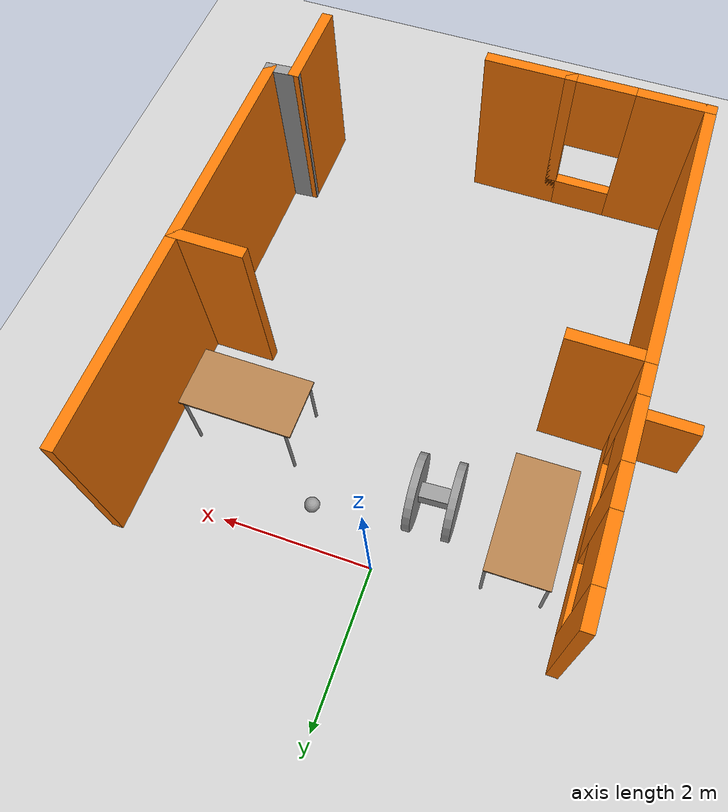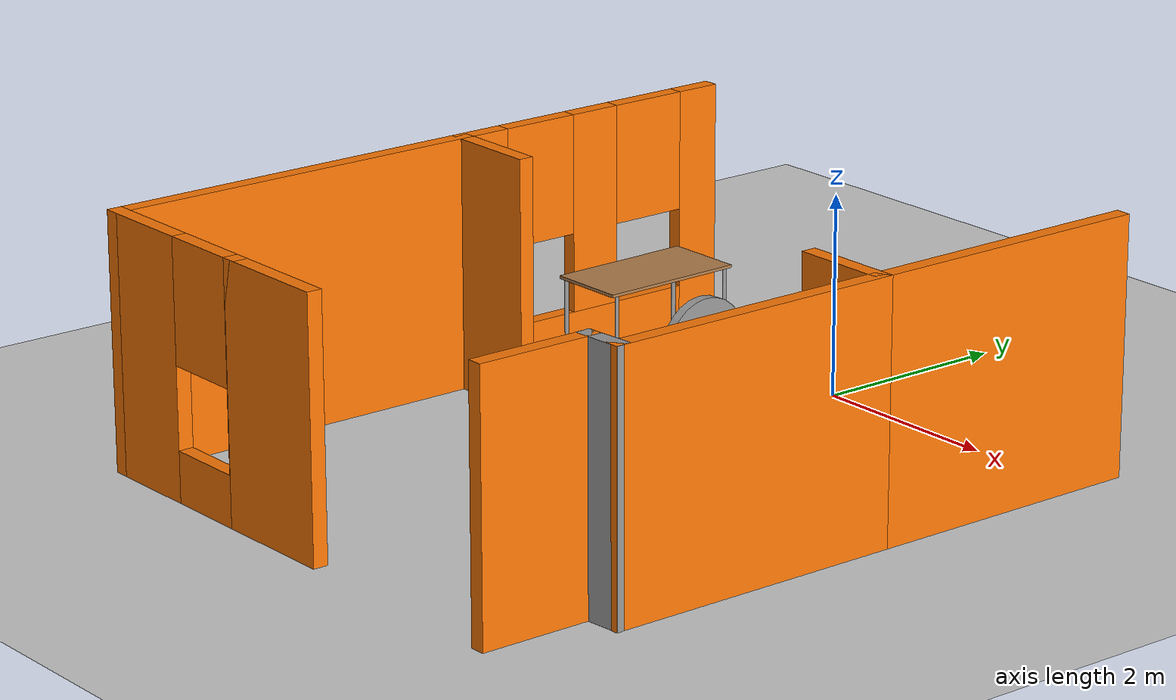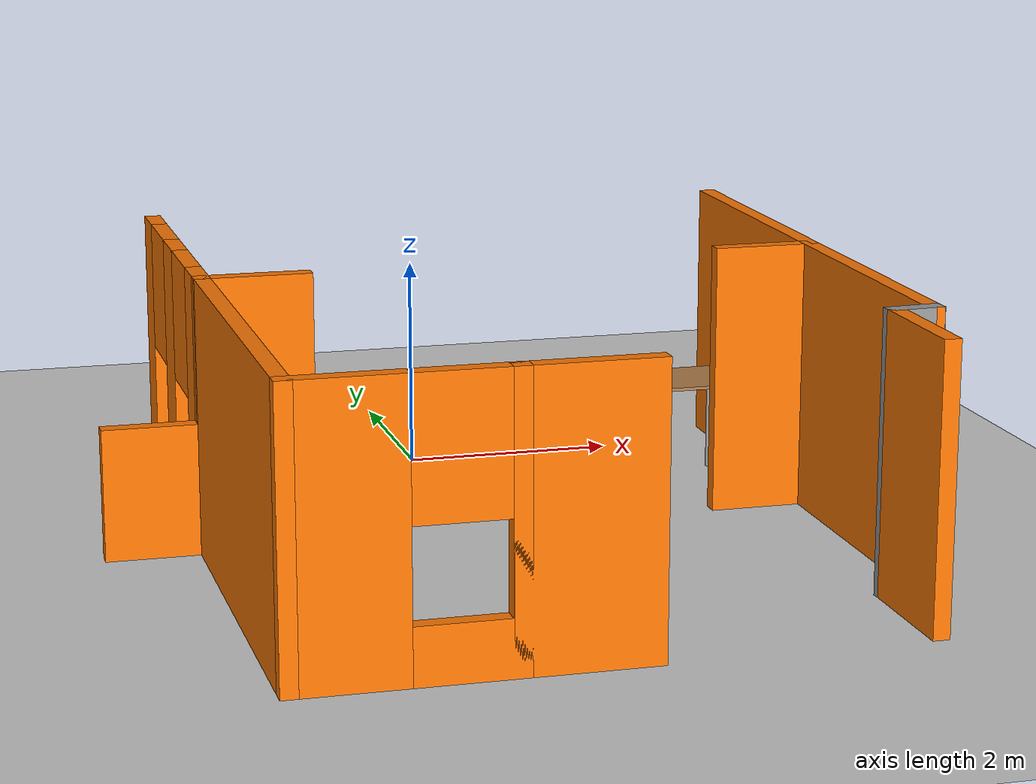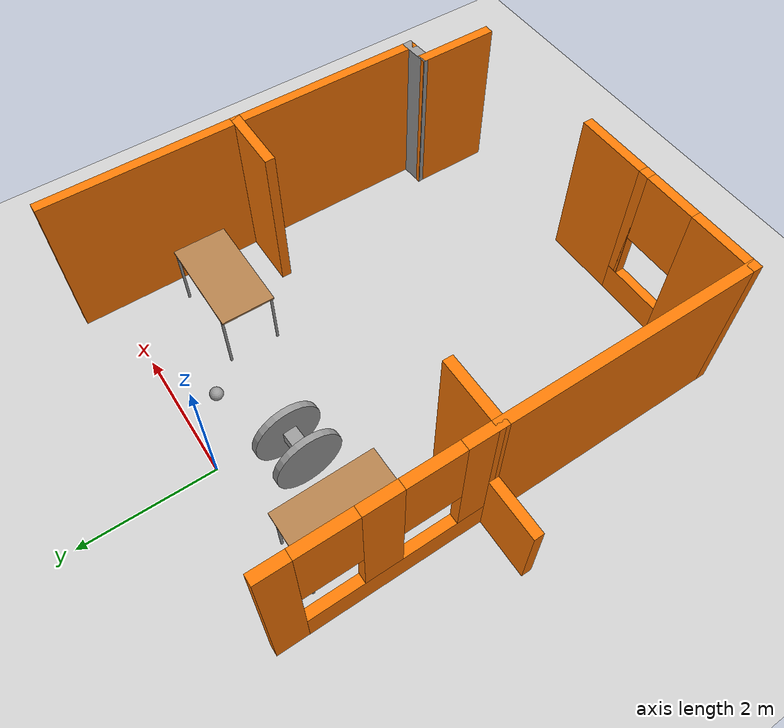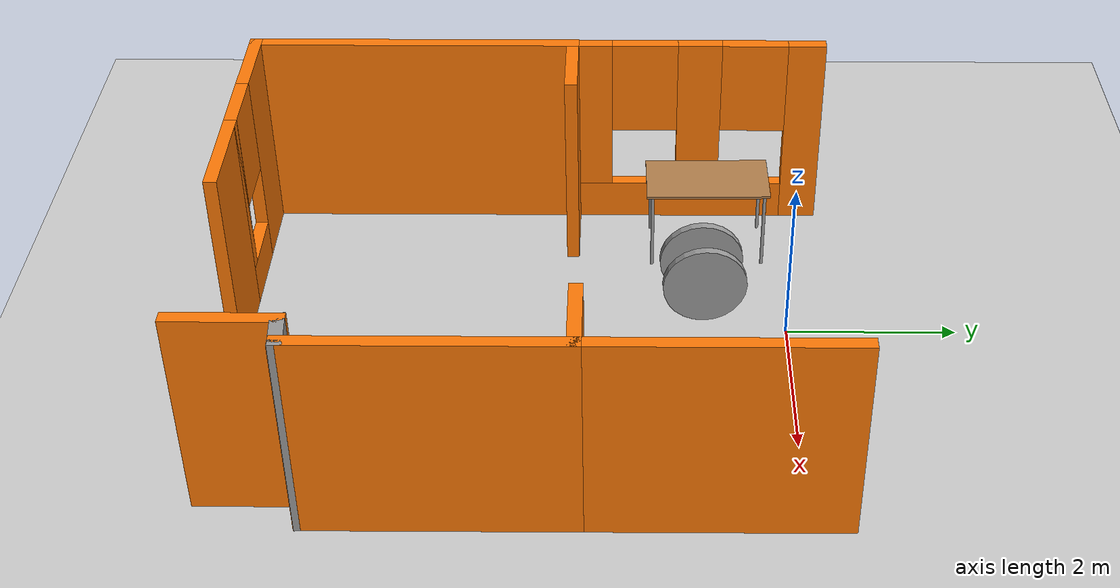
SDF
<sdf version="1.6">
 <world name="default">
  <model name="ground_plane">
   <static>1</static>
   <link name="link">
    <collision name="collision">
     <geometry><plane><normal>0 0 1</normal><size>100 100</size></plane></geometry>
     <surface>
      <contact><collide_bitmask>65535</collide_bitmask></contact>
      <friction><ode><mu>100</mu><mu2>50</mu2></ode></friction>
     </surface>
    </collision>
    <visual name="visual">
     <cast_shadows>0</cast_shadows>
     <geometry><plane><normal>0 0 1</normal><size>100 100</size></plane></geometry>
     <material>
      <script><uri>file://media/materials/scripts/gazebo.material</uri><name>Gazebo/Grey</name></script>
     </material>
    </visual>
   </link>
  </model>
  <model name="table">
   <static>1</static>
   <link name="link">
    <collision name="surface">
     <pose>0 0 1 0 -0 0</pose>
     <geometry><box><size>1.5 0.8 0.03</size></box></geometry>
     <surface><friction><ode><mu>0.6</mu><mu2>0.6</mu2></ode></friction></surface>
    </collision>
    <visual name="visual1">
     <pose>0 0 1 0 -0 0</pose>
     <geometry><box><size>1.5 0.8 0.03</size></box></geometry>
     <material>
      <script><uri>file://media/materials/scripts/gazebo.material</uri><name>Gazebo/Wood</name></script>
     </material>
    </visual>
    <collision name="front_left_leg">
     <pose>0.68 0.38 0.5 0 -0 0</pose>
     <geometry><cylinder><radius>0.02</radius><length>1</length></cylinder></geometry>
    </collision>
    <visual name="front_left_leg">
     <pose>0.68 0.38 0.5 0 -0 0</pose>
     <geometry><cylinder><radius>0.02</radius><length>1</length></cylinder></geometry>
     <material>
      <script><uri>file://media/materials/scripts/gazebo.material</uri><name>Gazebo/Grey</name></script>
     </material>
    </visual>
    <collision name="front_right_leg">
     <pose>0.68 -0.38 0.5 0 -0 0</pose>
     <geometry><cylinder><radius>0.02</radius><length>1</length></cylinder></geometry>
    </collision>
    <visual name="front_right_leg">
     <pose>0.68 -0.38 0.5 0 -0 0</pose>
     <geometry><cylinder><radius>0.02</radius><length>1</length></cylinder></geometry>
     <material>
      <script><uri>file://media/materials/scripts/gazebo.material</uri><name>Gazebo/Grey</name></script>
     </material>
    </visual>
    <collision name="back_right_leg">
     <pose>-0.68 -0.38 0.5 0 -0 0</pose>
     <geometry><cylinder><radius>0.02</radius><length>1</length></cylinder></geometry>
    </collision>
    <visual name="back_right_leg">
     <pose>-0.68 -0.38 0.5 0 -0 0</pose>
     <geometry><cylinder><radius>0.02</radius><length>1</length></cylinder></geometry>
     <material>
      <script><uri>file://media/materials/scripts/gazebo.material</uri><name>Gazebo/Grey</name></script>
     </material>
    </visual>
    <collision name="back_left_leg">
     <pose>-0.68 0.38 0.5 0 -0 0</pose>
     <geometry><cylinder><radius>0.02</radius><length>1</length></cylinder></geometry>
    </collision>
    <visual name="back_left_leg">
     <pose>-0.68 0.38 0.5 0 -0 0</pose>
     <geometry><cylinder><radius>0.02</radius><length>1</length></cylinder></geometry>
     <material>
      <script><uri>file://media/materials/scripts/gazebo.material</uri><name>Gazebo/Grey</name></script>
     </material>
    </visual>
   </link>
   <pose>-1.73141 -0.905015 0 0 0 -1.55569</pose>
  </model>
  <model name="table_clone">
   <static>1</static>
   <link name="link">
    <collision name="surface">
     <pose>0 0 1 0 -0 0</pose>
     <geometry><box><size>1.5 0.8 0.03</size></box></geometry>
     <surface><friction><ode><mu>0.6</mu><mu2>0.6</mu2></ode></friction></surface>
    </collision>
    <visual name="visual1">
     <pose>0 0 1 0 -0 0</pose>
     <geometry><box><size>1.5 0.8 0.03</size></box></geometry>
     <material>
      <script><uri>file://media/materials/scripts/gazebo.material</uri><name>Gazebo/Wood</name></script>
     </material>
    </visual>
    <collision name="front_left_leg">
     <pose>0.68 0.38 0.5 0 -0 0</pose>
     <geometry><cylinder><radius>0.02</radius><length>1</length></cylinder></geometry>
    </collision>
    <visual name="front_left_leg">
     <pose>0.68 0.38 0.5 0 -0 0</pose>
     <geometry><cylinder><radius>0.02</radius><length>1</length></cylinder></geometry>
     <material>
      <script><uri>file://media/materials/scripts/gazebo.material</uri><name>Gazebo/Grey</name></script>
     </material>
    </visual>
    <collision name="front_right_leg">
     <pose>0.68 -0.38 0.5 0 -0 0</pose>
     <geometry><cylinder><radius>0.02</radius><length>1</length></cylinder></geometry>
    </collision>
    <visual name="front_right_leg">
     <pose>0.68 -0.38 0.5 0 -0 0</pose>
     <geometry><cylinder><radius>0.02</radius><length>1</length></cylinder></geometry>
     <material>
      <script><uri>file://media/materials/scripts/gazebo.material</uri><name>Gazebo/Grey</name></script>
     </material>
    </visual>
    <collision name="back_right_leg">
     <pose>-0.68 -0.38 0.5 0 -0 0</pose>
     <geometry><cylinder><radius>0.02</radius><length>1</length></cylinder></geometry>
    </collision>
    <visual name="back_right_leg">
     <pose>-0.68 -0.38 0.5 0 -0 0</pose>
     <geometry><cylinder><radius>0.02</radius><length>1</length></cylinder></geometry>
     <material>
      <script><uri>file://media/materials/scripts/gazebo.material</uri><name>Gazebo/Grey</name></script>
     </material>
    </visual>
    <collision name="back_left_leg">
     <pose>-0.68 0.38 0.5 0 -0 0</pose>
     <geometry><cylinder><radius>0.02</radius><length>1</length></cylinder></geometry>
    </collision>
    <visual name="back_left_leg">
     <pose>-0.68 0.38 0.5 0 -0 0</pose>
     <geometry><cylinder><radius>0.02</radius><length>1</length></cylinder></geometry>
     <material>
      <script><uri>file://media/materials/scripts/gazebo.material</uri><name>Gazebo/Grey</name></script>
     </material>
    </visual>
   </link>
   <pose>2.1037 -1.35382 0 0 -0 0</pose>
  </model>
  <model name="myrobot">
   <link name="link_2">
    <pose>-0.013333 0 -0.013331 0 -0 0</pose>
    <inertial>
     <mass>1</mass>
     <inertia>
      <ixx>0.166667</ixx>
      <ixy>0</ixy>
      <ixz>0</ixz>
      <iyy>0.166667</iyy>
      <iyz>0</iyz>
      <izz>0.166667</izz>
     </inertia>
    </inertial>
    <visual name="visual">
     <geometry><box><size>0.2 0.4 0.2</size></box></geometry>
     <material>
      <lighting>1</lighting>
      <script><uri>file://media/materials/scripts/gazebo.material</uri><name>Gazebo/Grey</name></script>
      <shader type="pixel"><normal_map>__default__</normal_map></shader>
      <ambient>0.3 0.3 0.3 1</ambient>
      <diffuse>0.7 0.7 0.7 1</diffuse>
      <specular>0.01 0.01 0.01 1</specular>
      <emissive>0 0 0 1</emissive>
     </material>
    </visual>
    <collision name="collision">
     <geometry><box><size>0.2 0.4 0.2</size></box></geometry>
     <surface>
      <friction>
       <ode><mu>1</mu><mu2>1</mu2><fdir1>0 0 0</fdir1><slip1>0</slip1><slip2>0</slip2></ode>
       <torsional>
        <coefficient>1</coefficient>
        <patch_radius>0</patch_radius>
        <surface_radius>0</surface_radius>
        <use_patch_radius>1</use_patch_radius>
        <ode><slip>0</slip></ode>
       </torsional>
      </friction>
      <bounce><restitution_coefficient>0</restitution_coefficient><threshold>1e+06</threshold></bounce>
      <contact>
       <collide_without_contact>0</collide_without_contact>
       <collide_without_contact_bitmask>1</collide_without_contact_bitmask>
       <collide_bitmask>1</collide_bitmask>
       <ode>
        <soft_cfm>0</soft_cfm>
        <soft_erp>0.2</soft_erp>
        <kp>1e+13</kp>
        <kd>1</kd>
        <max_vel>0.01</max_vel>
        <min_depth>0</min_depth>
       </ode>
       <bullet>
        <split_impulse>1</split_impulse>
        <split_impulse_penetration_threshold>-0.01</split_impulse_penetration_threshold>
        <soft_cfm>0</soft_cfm>
        <soft_erp>0.2</soft_erp>
        <kp>1e+13</kp>
        <kd>1</kd>
       </bullet>
      </contact>
     </surface>
    </collision>
   </link>
   <link name="link_3">
    <pose>0.006667 -0.250048 0.006665 1.5707 -0 0</pose>
    <inertial>
     <mass>1</mass>
     <inertia><ixx>0.145833</ixx><ixy>0</ixy><ixz>0</ixz><iyy>0.145833</iyy><iyz>0</iyz><izz>0.125</izz></inertia>
    </inertial>
    <visual name="visual">
     <geometry><cylinder><radius>0.5</radius><length>0.1</length></cylinder></geometry>
     <material>
      <lighting>1</lighting>
      <script><uri>file://media/materials/scripts/gazebo.material</uri><name>Gazebo/Grey</name></script>
      <shader type="pixel"><normal_map>__default__</normal_map></shader>
      <ambient>0.3 0.3 0.3 1</ambient>
      <diffuse>0.7 0.7 0.7 1</diffuse>
      <specular>0.01 0.01 0.01 1</specular>
      <emissive>0 0 0 1</emissive>
     </material>
    </visual>
    <collision name="collision">
     <geometry><cylinder><radius>0.5</radius><length>0.1</length></cylinder></geometry>
     <surface>
      <friction>
       <ode><mu>1</mu><mu2>1</mu2><fdir1>0 0 0</fdir1><slip1>0</slip1><slip2>0</slip2></ode>
       <torsional>
        <coefficient>1</coefficient>
        <patch_radius>0</patch_radius>
        <surface_radius>0</surface_radius>
        <use_patch_radius>1</use_patch_radius>
        <ode><slip>0</slip></ode>
       </torsional>
      </friction>
      <bounce><restitution_coefficient>0</restitution_coefficient><threshold>1e+06</threshold></bounce>
      <contact>
       <collide_without_contact>0</collide_without_contact>
       <collide_without_contact_bitmask>1</collide_without_contact_bitmask>
       <collide_bitmask>1</collide_bitmask>
       <ode>
        <soft_cfm>0</soft_cfm>
        <soft_erp>0.2</soft_erp>
        <kp>1e+13</kp>
        <kd>1</kd>
        <max_vel>0.01</max_vel>
        <min_depth>0</min_depth>
       </ode>
       <bullet>
        <split_impulse>1</split_impulse>
        <split_impulse_penetration_threshold>-0.01</split_impulse_penetration_threshold>
        <soft_cfm>0</soft_cfm>
        <soft_erp>0.2</soft_erp>
        <kp>1e+13</kp>
        <kd>1</kd>
       </bullet>
      </contact>
     </surface>
    </collision>
   </link>
   <link name="link_3_clone">
    <pose>0.006667 0.250048 0.006669 1.5707 -0 0</pose>
    <inertial>
     <mass>1</mass>
     <inertia><ixx>0.145833</ixx><ixy>0</ixy><ixz>0</ixz><iyy>0.145833</iyy><iyz>0</iyz><izz>0.125</izz></inertia>
    </inertial>
    <visual name="visual">
     <geometry><cylinder><radius>0.5</radius><length>0.1</length></cylinder></geometry>
     <material>
      <lighting>1</lighting>
      <script><uri>file://media/materials/scripts/gazebo.material</uri><name>Gazebo/Grey</name></script>
      <shader type="pixel"><normal_map>__default__</normal_map></shader>
      <ambient>0.3 0.3 0.3 1</ambient>
      <diffuse>0.7 0.7 0.7 1</diffuse>
      <specular>0.01 0.01 0.01 1</specular>
      <emissive>0 0 0 1</emissive>
     </material>
    </visual>
    <collision name="collision">
     <geometry><cylinder><radius>0.5</radius><length>0.1</length></cylinder></geometry>
     <surface>
      <friction>
       <ode><mu>1</mu><mu2>1</mu2><fdir1>0 0 0</fdir1><slip1>0</slip1><slip2>0</slip2></ode>
       <torsional>
        <coefficient>1</coefficient>
        <patch_radius>0</patch_radius>
        <surface_radius>0</surface_radius>
        <use_patch_radius>1</use_patch_radius>
        <ode><slip>0</slip></ode>
       </torsional>
      </friction>
      <bounce><restitution_coefficient>0</restitution_coefficient><threshold>1e+06</threshold></bounce>
      <contact>
       <collide_without_contact>0</collide_without_contact>
       <collide_without_contact_bitmask>1</collide_without_contact_bitmask>
       <collide_bitmask>1</collide_bitmask>
       <ode>
        <soft_cfm>0</soft_cfm>
        <soft_erp>0.2</soft_erp>
        <kp>1e+13</kp>
        <kd>1</kd>
        <max_vel>0.01</max_vel>
        <min_depth>0</min_depth>
       </ode>
       <bullet>
        <split_impulse>1</split_impulse>
        <split_impulse_penetration_threshold>-0.01</split_impulse_penetration_threshold>
        <soft_cfm>0</soft_cfm>
        <soft_erp>0.2</soft_erp>
        <kp>1e+13</kp>
        <kd>1</kd>
       </bullet>
      </contact>
     </surface>
    </collision>
   </link>
   <joint name="link_2_JOINT_6" type="revolute">
    <parent>link_2</parent>
    <child>link_3</child>
    <axis>
     <xyz>0 0 -1</xyz>
     <use_parent_model_frame>0</use_parent_model_frame>
     <limit>
      <lower>-1.79769e+308</lower>
      <upper>1.79769e+308</upper>
      <effort>-1</effort>
      <velocity>-1</velocity>
     </limit>
     <dynamics>
      <spring_reference>0</spring_reference>
      <spring_stiffness>0</spring_stiffness>
      <damping>0</damping>
     </dynamics>
    </axis>
    <physics>
     <ode><limit><cfm>0</cfm><erp>0.2</erp></limit><suspension><cfm>0</cfm><erp>0.2</erp></suspension></ode>
    </physics>
   </joint>
   <joint name="link_2_JOINT_7" type="revolute">
    <parent>link_2</parent>
    <child>link_3_clone</child>
    <axis>
     <xyz>0 0 1</xyz>
     <use_parent_model_frame>0</use_parent_model_frame>
     <limit>
      <lower>-1.79769e+308</lower>
      <upper>1.79769e+308</upper>
      <effort>-1</effort>
      <velocity>-1</velocity>
     </limit>
     <dynamics>
      <spring_reference>0</spring_reference>
      <spring_stiffness>0</spring_stiffness>
      <damping>0</damping>
     </dynamics>
    </axis>
    <physics>
     <ode><limit><cfm>0</cfm><erp>0.2</erp></limit><suspension><cfm>0</cfm><erp>0.2</erp></suspension></ode>
    </physics>
   </joint>
   <static>0</static>
   <pose>-0.516933 -0.988958 0.493359 3.14157 -1.56689 1.6263</pose>
  </model>
  <model name="myhouse">
   <link name="Wall_12">
    <pose>3.27238 0.092367 0 0 0 -1.5708</pose>
    <visual name="Wall_12_Visual">
     <pose>0 0 1.25 0 -0 0</pose>
     <geometry><box><size>3 0.15 2.5</size></box></geometry>
     <material>
      <script><uri>file://media/materials/scripts/gazebo.material</uri><name>Gazebo/Grey</name></script>
      <ambient>0.996078 0.47451 0.0196078 1</ambient>
      <shader type="pixel"/>
      <diffuse>0.7 0.7 0.7 1</diffuse>
      <specular>0.01 0.01 0.01 1</specular>
      <emissive>0 0 0 1</emissive>
     </material>
     <meta><layer>0</layer></meta>
    </visual>
    <collision name="Wall_12_Collision">
     <pose>0 0 1.25 0 -0 0</pose>
     <geometry><box><size>3 0.15 2.5</size></box></geometry>
     <surface>
      <friction>
       <ode><mu>1</mu><mu2>1</mu2><fdir1>0 0 0</fdir1><slip1>0</slip1><slip2>0</slip2></ode>
       <torsional>
        <coefficient>1</coefficient>
        <patch_radius>0</patch_radius>
        <surface_radius>0</surface_radius>
        <use_patch_radius>1</use_patch_radius>
        <ode><slip>0</slip></ode>
       </torsional>
      </friction>
      <bounce><restitution_coefficient>0</restitution_coefficient><threshold>1e+06</threshold></bounce>
      <contact>
       <collide_without_contact>0</collide_without_contact>
       <collide_without_contact_bitmask>1</collide_without_contact_bitmask>
       <collide_bitmask>1</collide_bitmask>
       <ode>
        <soft_cfm>0</soft_cfm>
        <soft_erp>0.2</soft_erp>
        <kp>1e+13</kp>
        <kd>1</kd>
        <max_vel>0.01</max_vel>
        <min_depth>0</min_depth>
       </ode>
       <bullet>
        <split_impulse>1</split_impulse>
        <split_impulse_penetration_threshold>-0.01</split_impulse_penetration_threshold>
        <soft_cfm>0</soft_cfm>
        <soft_erp>0.2</soft_erp>
        <kp>1e+13</kp>
        <kd>1</kd>
       </bullet>
      </contact>
     </surface>
    </collision>
   </link>
   <link name="Wall_2">
    <pose>-2.85285 -1.48287 0 0 -0 0</pose>
    <visual name="Wall_2_Visual">
     <pose>0 0 0.6 0 -0 0</pose>
     <geometry><box><size>1 0.15 1.2</size></box></geometry>
     <material>
      <script><uri>file://media/materials/scripts/gazebo.material</uri><name>Gazebo/Grey</name></script>
      <ambient>0.996078 0.47451 0.0196078 1</ambient>
      <shader type="pixel"/>
      <diffuse>0.7 0.7 0.7 1</diffuse>
      <specular>0.01 0.01 0.01 1</specular>
      <emissive>0 0 0 1</emissive>
     </material>
     <meta><layer>0</layer></meta>
    </visual>
    <collision name="Wall_2_Collision">
     <pose>0 0 0.6 0 -0 0</pose>
     <geometry><box><size>1 0.15 1.2</size></box></geometry>
     <surface>
      <friction>
       <ode><mu>1</mu><mu2>1</mu2><fdir1>0 0 0</fdir1><slip1>0</slip1><slip2>0</slip2></ode>
       <torsional>
        <coefficient>1</coefficient>
        <patch_radius>0</patch_radius>
        <surface_radius>0</surface_radius>
        <use_patch_radius>1</use_patch_radius>
        <ode><slip>0</slip></ode>
       </torsional>
      </friction>
      <bounce><restitution_coefficient>0</restitution_coefficient><threshold>1e+06</threshold></bounce>
      <contact>
       <collide_without_contact>0</collide_without_contact>
       <collide_without_contact_bitmask>1</collide_without_contact_bitmask>
       <collide_bitmask>1</collide_bitmask>
       <ode>
        <soft_cfm>0</soft_cfm>
        <soft_erp>0.2</soft_erp>
        <kp>1e+13</kp>
        <kd>1</kd>
        <max_vel>0.01</max_vel>
        <min_depth>0</min_depth>
       </ode>
       <bullet>
        <split_impulse>1</split_impulse>
        <split_impulse_penetration_threshold>-0.01</split_impulse_penetration_threshold>
        <soft_cfm>0</soft_cfm>
        <soft_erp>0.2</soft_erp>
        <kp>1e+13</kp>
        <kd>1</kd>
       </bullet>
      </contact>
     </surface>
    </collision>
   </link>
   <link name="Wall_28">
    <pose>-2.42773 0.01725 0 0 0 -1.57088</pose>
    <visual name="Wall_28_Visual_0">
     <pose>-1.34586 0 1.25 0 -0 0</pose>
     <geometry><box><size>0.458272 0.15 2.5</size></box></geometry>
     <material>
      <script><uri>file://media/materials/scripts/gazebo.material</uri><name>Gazebo/Grey</name></script>
      <ambient>0.996078 0.47451 0.0196078 1</ambient>
      <shader type="pixel"/>
      <diffuse>0.7 0.7 0.7 1</diffuse>
      <specular>0.01 0.01 0.01 1</specular>
      <emissive>0 0 0 1</emissive>
     </material>
     <meta><layer>0</layer></meta>
    </visual>
    <visual name="Wall_28_Visual_1">
     <pose>0.229136 0 0.25 0 -0 0</pose>
     <geometry><box><size>2.69173 0.15 0.5</size></box></geometry>
     <material>
      <script><uri>file://media/materials/scripts/gazebo.material</uri><name>Gazebo/Grey</name></script>
      <ambient>0.996078 0.47451 0.0196078 1</ambient>
      <shader type="pixel"/>
      <diffuse>0.7 0.7 0.7 1</diffuse>
      <specular>0.01 0.01 0.01 1</specular>
      <emissive>0 0 0 1</emissive>
     </material>
     <meta><layer>0</layer></meta>
    </visual>
    <visual name="Wall_28_Visual_2">
     <pose>-0.048279 0 1.5 0 -0 0</pose>
     <geometry><box><size>0.536897 0.15 2</size></box></geometry>
     <material>
      <script><uri>file://media/materials/scripts/gazebo.material</uri><name>Gazebo/Grey</name></script>
      <ambient>0.996078 0.47451 0.0196078 1</ambient>
      <shader type="pixel"/>
      <diffuse>0.7 0.7 0.7 1</diffuse>
      <specular>0.01 0.01 0.01 1</specular>
      <emissive>0 0 0 1</emissive>
     </material>
     <meta><layer>0</layer></meta>
    </visual>
    <visual name="Wall_28_Visual_3">
     <pose>1.29758 0 1.5 0 -0 0</pose>
     <geometry><box><size>0.55483 0.15 2</size></box></geometry>
     <material>
      <script><uri>file://media/materials/scripts/gazebo.material</uri><name>Gazebo/Grey</name></script>
      <ambient>0.996078 0.47451 0.0196078 1</ambient>
      <shader type="pixel"/>
      <diffuse>0.7 0.7 0.7 1</diffuse>
      <specular>0.01 0.01 0.01 1</specular>
      <emissive>0 0 0 1</emissive>
     </material>
     <meta><layer>0</layer></meta>
    </visual>
    <visual name="Wall_28_Visual_4">
     <pose>-0.716728 0 1.9 0 -0 0</pose>
     <geometry><box><size>0.8 0.15 1.2</size></box></geometry>
     <material>
      <script><uri>file://media/materials/scripts/gazebo.material</uri><name>Gazebo/Grey</name></script>
      <ambient>0.996078 0.47451 0.0196078 1</ambient>
      <shader type="pixel"/>
      <diffuse>0.7 0.7 0.7 1</diffuse>
      <specular>0.01 0.01 0.01 1</specular>
      <emissive>0 0 0 1</emissive>
     </material>
     <meta><layer>0</layer></meta>
    </visual>
    <visual name="Wall_28_Visual_5">
     <pose>0.62017 0 1.9 0 -0 0</pose>
     <geometry><box><size>0.8 0.15 1.2</size></box></geometry>
     <material>
      <script><uri>file://media/materials/scripts/gazebo.material</uri><name>Gazebo/Grey</name></script>
      <ambient>0.996078 0.47451 0.0196078 1</ambient>
      <shader type="pixel"/>
      <diffuse>0.7 0.7 0.7 1</diffuse>
      <specular>0.01 0.01 0.01 1</specular>
      <emissive>0 0 0 1</emissive>
     </material>
     <meta><layer>0</layer></meta>
    </visual>
    <collision name="Wall_28_Collision_0">
     <pose>-1.34586 0 1.25 0 -0 0</pose>
     <geometry><box><size>0.458272 0.15 2.5</size></box></geometry>
     <surface>
      <friction>
       <ode><mu>1</mu><mu2>1</mu2><fdir1>0 0 0</fdir1><slip1>0</slip1><slip2>0</slip2></ode>
       <torsional>
        <coefficient>1</coefficient>
        <patch_radius>0</patch_radius>
        <surface_radius>0</surface_radius>
        <use_patch_radius>1</use_patch_radius>
        <ode><slip>0</slip></ode>
       </torsional>
      </friction>
      <bounce><restitution_coefficient>0</restitution_coefficient><threshold>1e+06</threshold></bounce>
      <contact>
       <collide_without_contact>0</collide_without_contact>
       <collide_without_contact_bitmask>1</collide_without_contact_bitmask>
       <collide_bitmask>1</collide_bitmask>
       <ode>
        <soft_cfm>0</soft_cfm>
        <soft_erp>0.2</soft_erp>
        <kp>1e+13</kp>
        <kd>1</kd>
        <max_vel>0.01</max_vel>
        <min_depth>0</min_depth>
       </ode>
       <bullet>
        <split_impulse>1</split_impulse>
        <split_impulse_penetration_threshold>-0.01</split_impulse_penetration_threshold>
        <soft_cfm>0</soft_cfm>
        <soft_erp>0.2</soft_erp>
        <kp>1e+13</kp>
        <kd>1</kd>
       </bullet>
      </contact>
     </surface>
    </collision>
    <collision name="Wall_28_Collision_1">
     <pose>0.229136 0 0.25 0 -0 0</pose>
     <geometry><box><size>2.69173 0.15 0.5</size></box></geometry>
     <surface>
      <friction>
       <ode><mu>1</mu><mu2>1</mu2><fdir1>0 0 0</fdir1><slip1>0</slip1><slip2>0</slip2></ode>
       <torsional>
        <coefficient>1</coefficient>
        <patch_radius>0</patch_radius>
        <surface_radius>0</surface_radius>
        <use_patch_radius>1</use_patch_radius>
        <ode><slip>0</slip></ode>
       </torsional>
      </friction>
      <bounce><restitution_coefficient>0</restitution_coefficient><threshold>1e+06</threshold></bounce>
      <contact>
       <collide_without_contact>0</collide_without_contact>
       <collide_without_contact_bitmask>1</collide_without_contact_bitmask>
       <collide_bitmask>1</collide_bitmask>
       <ode>
        <soft_cfm>0</soft_cfm>
        <soft_erp>0.2</soft_erp>
        <kp>1e+13</kp>
        <kd>1</kd>
        <max_vel>0.01</max_vel>
        <min_depth>0</min_depth>
       </ode>
       <bullet>
        <split_impulse>1</split_impulse>
        <split_impulse_penetration_threshold>-0.01</split_impulse_penetration_threshold>
        <soft_cfm>0</soft_cfm>
        <soft_erp>0.2</soft_erp>
        <kp>1e+13</kp>
        <kd>1</kd>
       </bullet>
      </contact>
     </surface>
    </collision>
    <collision name="Wall_28_Collision_2">
     <pose>-0.048279 0 1.5 0 -0 0</pose>
     <geometry><box><size>0.536897 0.15 2</size></box></geometry>
     <surface>
      <friction>
       <ode><mu>1</mu><mu2>1</mu2><fdir1>0 0 0</fdir1><slip1>0</slip1><slip2>0</slip2></ode>
       <torsional>
        <coefficient>1</coefficient>
        <patch_radius>0</patch_radius>
        <surface_radius>0</surface_radius>
        <use_patch_radius>1</use_patch_radius>
        <ode><slip>0</slip></ode>
       </torsional>
      </friction>
      <bounce><restitution_coefficient>0</restitution_coefficient><threshold>1e+06</threshold></bounce>
      <contact>
       <collide_without_contact>0</collide_without_contact>
       <collide_without_contact_bitmask>1</collide_without_contact_bitmask>
       <collide_bitmask>1</collide_bitmask>
       <ode>
        <soft_cfm>0</soft_cfm>
        <soft_erp>0.2</soft_erp>
        <kp>1e+13</kp>
        <kd>1</kd>
        <max_vel>0.01</max_vel>
        <min_depth>0</min_depth>
       </ode>
       <bullet>
        <split_impulse>1</split_impulse>
        <split_impulse_penetration_threshold>-0.01</split_impulse_penetration_threshold>
        <soft_cfm>0</soft_cfm>
        <soft_erp>0.2</soft_erp>
        <kp>1e+13</kp>
        <kd>1</kd>
       </bullet>
      </contact>
     </surface>
    </collision>
    <collision name="Wall_28_Collision_3">
     <pose>1.29758 0 1.5 0 -0 0</pose>
     <geometry><box><size>0.55483 0.15 2</size></box></geometry>
     <surface>
      <friction>
       <ode><mu>1</mu><mu2>1</mu2><fdir1>0 0 0</fdir1><slip1>0</slip1><slip2>0</slip2></ode>
       <torsional>
        <coefficient>1</coefficient>
        <patch_radius>0</patch_radius>
        <surface_radius>0</surface_radius>
        <use_patch_radius>1</use_patch_radius>
        <ode><slip>0</slip></ode>
       </torsional>
      </friction>
      <bounce><restitution_coefficient>0</restitution_coefficient><threshold>1e+06</threshold></bounce>
      <contact>
       <collide_without_contact>0</collide_without_contact>
       <collide_without_contact_bitmask>1</collide_without_contact_bitmask>
       <collide_bitmask>1</collide_bitmask>
       <ode>
        <soft_cfm>0</soft_cfm>
        <soft_erp>0.2</soft_erp>
        <kp>1e+13</kp>
        <kd>1</kd>
        <max_vel>0.01</max_vel>
        <min_depth>0</min_depth>
       </ode>
       <bullet>
        <split_impulse>1</split_impulse>
        <split_impulse_penetration_threshold>-0.01</split_impulse_penetration_threshold>
        <soft_cfm>0</soft_cfm>
        <soft_erp>0.2</soft_erp>
        <kp>1e+13</kp>
        <kd>1</kd>
       </bullet>
      </contact>
     </surface>
    </collision>
    <collision name="Wall_28_Collision_4">
     <pose>-0.716728 0 1.9 0 -0 0</pose>
     <geometry><box><size>0.8 0.15 1.2</size></box></geometry>
     <surface>
      <friction>
       <ode><mu>1</mu><mu2>1</mu2><fdir1>0 0 0</fdir1><slip1>0</slip1><slip2>0</slip2></ode>
       <torsional>
        <coefficient>1</coefficient>
        <patch_radius>0</patch_radius>
        <surface_radius>0</surface_radius>
        <use_patch_radius>1</use_patch_radius>
        <ode><slip>0</slip></ode>
       </torsional>
      </friction>
      <bounce><restitution_coefficient>0</restitution_coefficient><threshold>1e+06</threshold></bounce>
      <contact>
       <collide_without_contact>0</collide_without_contact>
       <collide_without_contact_bitmask>1</collide_without_contact_bitmask>
       <collide_bitmask>1</collide_bitmask>
       <ode>
        <soft_cfm>0</soft_cfm>
        <soft_erp>0.2</soft_erp>
        <kp>1e+13</kp>
        <kd>1</kd>
        <max_vel>0.01</max_vel>
        <min_depth>0</min_depth>
       </ode>
       <bullet>
        <split_impulse>1</split_impulse>
        <split_impulse_penetration_threshold>-0.01</split_impulse_penetration_threshold>
        <soft_cfm>0</soft_cfm>
        <soft_erp>0.2</soft_erp>
        <kp>1e+13</kp>
        <kd>1</kd>
       </bullet>
      </contact>
     </surface>
    </collision>
    <collision name="Wall_28_Collision_5">
     <pose>0.62017 0 1.9 0 -0 0</pose>
     <geometry><box><size>0.8 0.15 1.2</size></box></geometry>
     <surface>
      <friction>
       <ode><mu>1</mu><mu2>1</mu2><fdir1>0 0 0</fdir1><slip1>0</slip1><slip2>0</slip2></ode>
       <torsional>
        <coefficient>1</coefficient>
        <patch_radius>0</patch_radius>
        <surface_radius>0</surface_radius>
        <use_patch_radius>1</use_patch_radius>
        <ode><slip>0</slip></ode>
       </torsional>
      </friction>
      <bounce><restitution_coefficient>0</restitution_coefficient><threshold>1e+06</threshold></bounce>
      <contact>
       <collide_without_contact>0</collide_without_contact>
       <collide_without_contact_bitmask>1</collide_without_contact_bitmask>
       <collide_bitmask>1</collide_bitmask>
       <ode>
        <soft_cfm>0</soft_cfm>
        <soft_erp>0.2</soft_erp>
        <kp>1e+13</kp>
        <kd>1</kd>
        <max_vel>0.01</max_vel>
        <min_depth>0</min_depth>
       </ode>
       <bullet>
        <split_impulse>1</split_impulse>
        <split_impulse_penetration_threshold>-0.01</split_impulse_penetration_threshold>
        <soft_cfm>0</soft_cfm>
        <soft_erp>0.2</soft_erp>
        <kp>1e+13</kp>
        <kd>1</kd>
       </bullet>
      </contact>
     </surface>
    </collision>
   </link>
   <link name="Wall_3">
    <pose>-2.42773 -3.40775 0 0 0 -1.57073</pose>
    <visual name="Wall_3_Visual">
     <pose>0 0 1.25 0 -0 0</pose>
     <geometry><box><size>4 0.15 2.5</size></box></geometry>
     <material>
      <script><uri>file://media/materials/scripts/gazebo.material</uri><name>Gazebo/Grey</name></script>
      <ambient>0.996078 0.47451 0.0196078 1</ambient>
      <shader type="pixel"/>
      <diffuse>0.7 0.7 0.7 1</diffuse>
      <specular>0.01 0.01 0.01 1</specular>
      <emissive>0 0 0 1</emissive>
     </material>
     <meta><layer>0</layer></meta>
    </visual>
    <collision name="Wall_3_Collision">
     <pose>0 0 1.25 0 -0 0</pose>
     <geometry><box><size>4 0.15 2.5</size></box></geometry>
     <surface>
      <friction>
       <ode><mu>1</mu><mu2>1</mu2><fdir1>0 0 0</fdir1><slip1>0</slip1><slip2>0</slip2></ode>
       <torsional>
        <coefficient>1</coefficient>
        <patch_radius>0</patch_radius>
        <surface_radius>0</surface_radius>
        <use_patch_radius>1</use_patch_radius>
        <ode><slip>0</slip></ode>
       </torsional>
      </friction>
      <bounce><restitution_coefficient>0</restitution_coefficient><threshold>1e+06</threshold></bounce>
      <contact>
       <collide_without_contact>0</collide_without_contact>
       <collide_without_contact_bitmask>1</collide_without_contact_bitmask>
       <collide_bitmask>1</collide_bitmask>
       <ode>
        <soft_cfm>0</soft_cfm>
        <soft_erp>0.2</soft_erp>
        <kp>1e+13</kp>
        <kd>1</kd>
        <max_vel>0.01</max_vel>
        <min_depth>0</min_depth>
       </ode>
       <bullet>
        <split_impulse>1</split_impulse>
        <split_impulse_penetration_threshold>-0.01</split_impulse_penetration_threshold>
        <soft_cfm>0</soft_cfm>
        <soft_erp>0.2</soft_erp>
        <kp>1e+13</kp>
        <kd>1</kd>
       </bullet>
      </contact>
     </surface>
    </collision>
   </link>
   <link name="Wall_30">
    <pose>-1.97585 -1.48287 0 0 -0 0</pose>
    <visual name="Wall_30_Visual">
     <pose>0 0 1.25 0 -0 0</pose>
     <geometry><box><size>1.054 0.15 2.5</size></box></geometry>
     <material>
      <script><uri>file://media/materials/scripts/gazebo.material</uri><name>Gazebo/Grey</name></script>
      <ambient>0.996078 0.47451 0.0196078 1</ambient>
      <shader type="pixel"/>
      <diffuse>0.7 0.7 0.7 1</diffuse>
      <specular>0.01 0.01 0.01 1</specular>
      <emissive>0 0 0 1</emissive>
     </material>
     <meta><layer>0</layer></meta>
    </visual>
    <collision name="Wall_30_Collision">
     <pose>0 0 1.25 0 -0 0</pose>
     <geometry><box><size>1.054 0.15 2.5</size></box></geometry>
     <surface>
      <friction>
       <ode><mu>1</mu><mu2>1</mu2><fdir1>0 0 0</fdir1><slip1>0</slip1><slip2>0</slip2></ode>
       <torsional>
        <coefficient>1</coefficient>
        <patch_radius>0</patch_radius>
        <surface_radius>0</surface_radius>
        <use_patch_radius>1</use_patch_radius>
        <ode><slip>0</slip></ode>
       </torsional>
      </friction>
      <bounce><restitution_coefficient>0</restitution_coefficient><threshold>1e+06</threshold></bounce>
      <contact>
       <collide_without_contact>0</collide_without_contact>
       <collide_without_contact_bitmask>1</collide_without_contact_bitmask>
       <collide_bitmask>1</collide_bitmask>
       <ode>
        <soft_cfm>0</soft_cfm>
        <soft_erp>0.2</soft_erp>
        <kp>1e+13</kp>
        <kd>1</kd>
        <max_vel>0.01</max_vel>
        <min_depth>0</min_depth>
       </ode>
       <bullet>
        <split_impulse>1</split_impulse>
        <split_impulse_penetration_threshold>-0.01</split_impulse_penetration_threshold>
        <soft_cfm>0</soft_cfm>
        <soft_erp>0.2</soft_erp>
        <kp>1e+13</kp>
        <kd>1</kd>
       </bullet>
      </contact>
     </surface>
    </collision>
   </link>
   <link name="Wall_33">
    <pose>-0.027616 -5.33263 0 0 -0 0</pose>
    <visual name="Wall_33_Visual">
     <pose>0 0 1.25 0 -0 0</pose>
     <geometry><box><size>1.25 0.15 2.5</size></box></geometry>
     <material>
      <script><uri>file://media/materials/scripts/gazebo.material</uri><name>Gazebo/Grey</name></script>
      <ambient>0.996078 0.47451 0.0196078 1</ambient>
      <shader type="pixel"/>
      <diffuse>0.7 0.7 0.7 1</diffuse>
      <specular>0.01 0.01 0.01 1</specular>
      <emissive>0 0 0 1</emissive>
     </material>
     <meta><layer>0</layer></meta>
    </visual>
    <collision name="Wall_33_Collision">
     <pose>0 0 1.25 0 -0 0</pose>
     <geometry><box><size>1.25 0.15 2.5</size></box></geometry>
     <surface>
      <friction>
       <ode><mu>1</mu><mu2>1</mu2><fdir1>0 0 0</fdir1><slip1>0</slip1><slip2>0</slip2></ode>
       <torsional>
        <coefficient>1</coefficient>
        <patch_radius>0</patch_radius>
        <surface_radius>0</surface_radius>
        <use_patch_radius>1</use_patch_radius>
        <ode><slip>0</slip></ode>
       </torsional>
      </friction>
      <bounce><restitution_coefficient>0</restitution_coefficient><threshold>1e+06</threshold></bounce>
      <contact>
       <collide_without_contact>0</collide_without_contact>
       <collide_without_contact_bitmask>1</collide_without_contact_bitmask>
       <collide_bitmask>1</collide_bitmask>
       <ode>
        <soft_cfm>0</soft_cfm>
        <soft_erp>0.2</soft_erp>
        <kp>1e+13</kp>
        <kd>1</kd>
        <max_vel>0.01</max_vel>
        <min_depth>0</min_depth>
       </ode>
       <bullet>
        <split_impulse>1</split_impulse>
        <split_impulse_penetration_threshold>-0.01</split_impulse_penetration_threshold>
        <soft_cfm>0</soft_cfm>
        <soft_erp>0.2</soft_erp>
        <kp>1e+13</kp>
        <kd>1</kd>
       </bullet>
      </contact>
     </surface>
    </collision>
   </link>
   <link name="Wall_37">
    <pose>2.84738 -1.33263 0 0 -0 3.14159</pose>
    <visual name="Wall_37_Visual">
     <pose>0 0 1.25 0 -0 0</pose>
     <geometry><box><size>1 0.15 2.5</size></box></geometry>
     <material>
      <script><uri>file://media/materials/scripts/gazebo.material</uri><name>Gazebo/Grey</name></script>
      <ambient>0.996078 0.47451 0.0196078 1</ambient>
      <shader type="pixel"/>
      <diffuse>0.7 0.7 0.7 1</diffuse>
      <specular>0.01 0.01 0.01 1</specular>
      <emissive>0 0 0 1</emissive>
     </material>
     <meta><layer>0</layer></meta>
    </visual>
    <collision name="Wall_37_Collision">
     <pose>0 0 1.25 0 -0 0</pose>
     <geometry><box><size>1 0.15 2.5</size></box></geometry>
     <surface>
      <friction>
       <ode><mu>1</mu><mu2>1</mu2><fdir1>0 0 0</fdir1><slip1>0</slip1><slip2>0</slip2></ode>
       <torsional>
        <coefficient>1</coefficient>
        <patch_radius>0</patch_radius>
        <surface_radius>0</surface_radius>
        <use_patch_radius>1</use_patch_radius>
        <ode><slip>0</slip></ode>
       </torsional>
      </friction>
      <bounce><restitution_coefficient>0</restitution_coefficient><threshold>1e+06</threshold></bounce>
      <contact>
       <collide_without_contact>0</collide_without_contact>
       <collide_without_contact_bitmask>1</collide_without_contact_bitmask>
       <collide_bitmask>1</collide_bitmask>
       <ode>
        <soft_cfm>0</soft_cfm>
        <soft_erp>0.2</soft_erp>
        <kp>1e+13</kp>
        <kd>1</kd>
        <max_vel>0.01</max_vel>
        <min_depth>0</min_depth>
       </ode>
       <bullet>
        <split_impulse>1</split_impulse>
        <split_impulse_penetration_threshold>-0.01</split_impulse_penetration_threshold>
        <soft_cfm>0</soft_cfm>
        <soft_erp>0.2</soft_erp>
        <kp>1e+13</kp>
        <kd>1</kd>
       </bullet>
      </contact>
     </surface>
    </collision>
   </link>
   <link name="Wall_4">
    <pose>-1.50262 -5.33263 0 0 -0 0</pose>
    <visual name="Wall_4_Visual_0">
     <pose>-0.478334 0 1.25 0 -0 0</pose>
     <geometry><box><size>1.04333 0.15 2.5</size></box></geometry>
     <material>
      <script><uri>file://media/materials/scripts/gazebo.material</uri><name>Gazebo/Grey</name></script>
      <ambient>0.996078 0.47451 0.0196078 1</ambient>
      <shader type="pixel"/>
      <diffuse>0.7 0.7 0.7 1</diffuse>
      <specular>0.01 0.01 0.01 1</specular>
      <emissive>0 0 0 1</emissive>
     </material>
     <meta><layer>0</layer></meta>
    </visual>
    <visual name="Wall_4_Visual_1">
     <pose>0.521666 0 0.25 0 -0 0</pose>
     <geometry><box><size>0.956669 0.15 0.5</size></box></geometry>
     <material>
      <script><uri>file://media/materials/scripts/gazebo.material</uri><name>Gazebo/Grey</name></script>
      <ambient>0.996078 0.47451 0.0196078 1</ambient>
      <shader type="pixel"/>
      <diffuse>0.7 0.7 0.7 1</diffuse>
      <specular>0.01 0.01 0.01 1</specular>
      <emissive>0 0 0 1</emissive>
     </material>
     <meta><layer>0</layer></meta>
    </visual>
    <visual name="Wall_4_Visual_2">
     <pose>0.921666 0 1.5 0 -0 0</pose>
     <geometry><box><size>0.156669 0.15 2</size></box></geometry>
     <material>
      <script><uri>file://media/materials/scripts/gazebo.material</uri><name>Gazebo/Grey</name></script>
      <ambient>0.996078 0.47451 0.0196078 1</ambient>
      <shader type="pixel"/>
      <diffuse>0.7 0.7 0.7 1</diffuse>
      <specular>0.01 0.01 0.01 1</specular>
      <emissive>0 0 0 1</emissive>
     </material>
     <meta><layer>0</layer></meta>
    </visual>
    <visual name="Wall_4_Visual_3">
     <pose>0.443331 0 1.9 0 -0 0</pose>
     <geometry><box><size>0.8 0.15 1.2</size></box></geometry>
     <material>
      <script><uri>file://media/materials/scripts/gazebo.material</uri><name>Gazebo/Grey</name></script>
      <ambient>0.996078 0.47451 0.0196078 1</ambient>
      <shader type="pixel"/>
      <diffuse>0.7 0.7 0.7 1</diffuse>
      <specular>0.01 0.01 0.01 1</specular>
      <emissive>0 0 0 1</emissive>
     </material>
     <meta><layer>0</layer></meta>
    </visual>
    <collision name="Wall_4_Collision_0">
     <pose>-0.478334 0 1.25 0 -0 0</pose>
     <geometry><box><size>1.04333 0.15 2.5</size></box></geometry>
     <surface>
      <friction>
       <ode><mu>1</mu><mu2>1</mu2><fdir1>0 0 0</fdir1><slip1>0</slip1><slip2>0</slip2></ode>
       <torsional>
        <coefficient>1</coefficient>
        <patch_radius>0</patch_radius>
        <surface_radius>0</surface_radius>
        <use_patch_radius>1</use_patch_radius>
        <ode><slip>0</slip></ode>
       </torsional>
      </friction>
      <bounce><restitution_coefficient>0</restitution_coefficient><threshold>1e+06</threshold></bounce>
      <contact>
       <collide_without_contact>0</collide_without_contact>
       <collide_without_contact_bitmask>1</collide_without_contact_bitmask>
       <collide_bitmask>1</collide_bitmask>
       <ode>
        <soft_cfm>0</soft_cfm>
        <soft_erp>0.2</soft_erp>
        <kp>1e+13</kp>
        <kd>1</kd>
        <max_vel>0.01</max_vel>
        <min_depth>0</min_depth>
       </ode>
       <bullet>
        <split_impulse>1</split_impulse>
        <split_impulse_penetration_threshold>-0.01</split_impulse_penetration_threshold>
        <soft_cfm>0</soft_cfm>
        <soft_erp>0.2</soft_erp>
        <kp>1e+13</kp>
        <kd>1</kd>
       </bullet>
      </contact>
     </surface>
    </collision>
    <collision name="Wall_4_Collision_1">
     <pose>0.521666 0 0.25 0 -0 0</pose>
     <geometry><box><size>0.956669 0.15 0.5</size></box></geometry>
     <surface>
      <friction>
       <ode><mu>1</mu><mu2>1</mu2><fdir1>0 0 0</fdir1><slip1>0</slip1><slip2>0</slip2></ode>
       <torsional>
        <coefficient>1</coefficient>
        <patch_radius>0</patch_radius>
        <surface_radius>0</surface_radius>
        <use_patch_radius>1</use_patch_radius>
        <ode><slip>0</slip></ode>
       </torsional>
      </friction>
      <bounce><restitution_coefficient>0</restitution_coefficient><threshold>1e+06</threshold></bounce>
      <contact>
       <collide_without_contact>0</collide_without_contact>
       <collide_without_contact_bitmask>1</collide_without_contact_bitmask>
       <collide_bitmask>1</collide_bitmask>
       <ode>
        <soft_cfm>0</soft_cfm>
        <soft_erp>0.2</soft_erp>
        <kp>1e+13</kp>
        <kd>1</kd>
        <max_vel>0.01</max_vel>
        <min_depth>0</min_depth>
       </ode>
       <bullet>
        <split_impulse>1</split_impulse>
        <split_impulse_penetration_threshold>-0.01</split_impulse_penetration_threshold>
        <soft_cfm>0</soft_cfm>
        <soft_erp>0.2</soft_erp>
        <kp>1e+13</kp>
        <kd>1</kd>
       </bullet>
      </contact>
     </surface>
    </collision>
    <collision name="Wall_4_Collision_2">
     <pose>0.921666 0 1.5 0 -0 0</pose>
     <geometry><box><size>0.156669 0.15 2</size></box></geometry>
     <surface>
      <friction>
       <ode><mu>1</mu><mu2>1</mu2><fdir1>0 0 0</fdir1><slip1>0</slip1><slip2>0</slip2></ode>
       <torsional>
        <coefficient>1</coefficient>
        <patch_radius>0</patch_radius>
        <surface_radius>0</surface_radius>
        <use_patch_radius>1</use_patch_radius>
        <ode><slip>0</slip></ode>
       </torsional>
      </friction>
      <bounce><restitution_coefficient>0</restitution_coefficient><threshold>1e+06</threshold></bounce>
      <contact>
       <collide_without_contact>0</collide_without_contact>
       <collide_without_contact_bitmask>1</collide_without_contact_bitmask>
       <collide_bitmask>1</collide_bitmask>
       <ode>
        <soft_cfm>0</soft_cfm>
        <soft_erp>0.2</soft_erp>
        <kp>1e+13</kp>
        <kd>1</kd>
        <max_vel>0.01</max_vel>
        <min_depth>0</min_depth>
       </ode>
       <bullet>
        <split_impulse>1</split_impulse>
        <split_impulse_penetration_threshold>-0.01</split_impulse_penetration_threshold>
        <soft_cfm>0</soft_cfm>
        <soft_erp>0.2</soft_erp>
        <kp>1e+13</kp>
        <kd>1</kd>
       </bullet>
      </contact>
     </surface>
    </collision>
    <collision name="Wall_4_Collision_3">
     <pose>0.443331 0 1.9 0 -0 0</pose>
     <geometry><box><size>0.8 0.15 1.2</size></box></geometry>
     <surface>
      <friction>
       <ode><mu>1</mu><mu2>1</mu2><fdir1>0 0 0</fdir1><slip1>0</slip1><slip2>0</slip2></ode>
       <torsional>
        <coefficient>1</coefficient>
        <patch_radius>0</patch_radius>
        <surface_radius>0</surface_radius>
        <use_patch_radius>1</use_patch_radius>
        <ode><slip>0</slip></ode>
       </torsional>
      </friction>
      <bounce><restitution_coefficient>0</restitution_coefficient><threshold>1e+06</threshold></bounce>
      <contact>
       <collide_without_contact>0</collide_without_contact>
       <collide_without_contact_bitmask>1</collide_without_contact_bitmask>
       <collide_bitmask>1</collide_bitmask>
       <ode>
        <soft_cfm>0</soft_cfm>
        <soft_erp>0.2</soft_erp>
        <kp>1e+13</kp>
        <kd>1</kd>
        <max_vel>0.01</max_vel>
        <min_depth>0</min_depth>
       </ode>
       <bullet>
        <split_impulse>1</split_impulse>
        <split_impulse_penetration_threshold>-0.01</split_impulse_penetration_threshold>
        <soft_cfm>0</soft_cfm>
        <soft_erp>0.2</soft_erp>
        <kp>1e+13</kp>
        <kd>1</kd>
       </bullet>
      </contact>
     </surface>
    </collision>
   </link>
   <link name="Wall_41">
    <pose>3.27238 -2.77093 0 0 0 -1.5708</pose>
    <visual name="Wall_41_Visual">
     <pose>0 0 1.25 0 -0 0</pose>
     <geometry><box><size>3.02709 0.15 2.5</size></box></geometry>
     <material>
      <script><uri>file://media/materials/scripts/gazebo.material</uri><name>Gazebo/Grey</name></script>
      <ambient>0.996078 0.47451 0.0196078 1</ambient>
      <shader type="pixel"/>
      <diffuse>0.7 0.7 0.7 1</diffuse>
      <specular>0.01 0.01 0.01 1</specular>
      <emissive>0 0 0 1</emissive>
     </material>
     <meta><layer>0</layer></meta>
    </visual>
    <collision name="Wall_41_Collision">
     <pose>0 0 1.25 0 -0 0</pose>
     <geometry><box><size>3.02709 0.15 2.5</size></box></geometry>
     <surface>
      <friction>
       <ode><mu>1</mu><mu2>1</mu2><fdir1>0 0 0</fdir1><slip1>0</slip1><slip2>0</slip2></ode>
       <torsional>
        <coefficient>1</coefficient>
        <patch_radius>0</patch_radius>
        <surface_radius>0</surface_radius>
        <use_patch_radius>1</use_patch_radius>
        <ode><slip>0</slip></ode>
       </torsional>
      </friction>
      <bounce><restitution_coefficient>0</restitution_coefficient><threshold>1e+06</threshold></bounce>
      <contact>
       <collide_without_contact>0</collide_without_contact>
       <collide_without_contact_bitmask>1</collide_without_contact_bitmask>
       <collide_bitmask>1</collide_bitmask>
       <ode>
        <soft_cfm>0</soft_cfm>
        <soft_erp>0.2</soft_erp>
        <kp>1e+13</kp>
        <kd>1</kd>
        <max_vel>0.01</max_vel>
        <min_depth>0</min_depth>
       </ode>
       <bullet>
        <split_impulse>1</split_impulse>
        <split_impulse_penetration_threshold>-0.01</split_impulse_penetration_threshold>
        <soft_cfm>0</soft_cfm>
        <soft_erp>0.2</soft_erp>
        <kp>1e+13</kp>
        <kd>1</kd>
       </bullet>
      </contact>
     </surface>
    </collision>
   </link>
   <link name="Wall_44">
    <pose>3.09738 -4.22253 0 0 0 -3.06574</pose>
    <visual name="Wall_44_Visual">
     <pose>0 0 1.25 0 -0 0</pose>
     <geometry><box><size>0.501009 0.15 2.5</size></box></geometry>
     <material>
      <script><uri>file://media/materials/scripts/gazebo.material</uri><name>Gazebo/Grey</name></script>
      <ambient>1 1 1 1</ambient>
      <shader type="pixel"/>
      <diffuse>0.7 0.7 0.7 1</diffuse>
      <specular>0.01 0.01 0.01 1</specular>
      <emissive>0 0 0 1</emissive>
     </material>
     <meta><layer>0</layer></meta>
    </visual>
    <collision name="Wall_44_Collision">
     <pose>0 0 1.25 0 -0 0</pose>
     <geometry><box><size>0.501009 0.15 2.5</size></box></geometry>
     <surface>
      <friction>
       <ode><mu>1</mu><mu2>1</mu2><fdir1>0 0 0</fdir1><slip1>0</slip1><slip2>0</slip2></ode>
       <torsional>
        <coefficient>1</coefficient>
        <patch_radius>0</patch_radius>
        <surface_radius>0</surface_radius>
        <use_patch_radius>1</use_patch_radius>
        <ode><slip>0</slip></ode>
       </torsional>
      </friction>
      <bounce><restitution_coefficient>0</restitution_coefficient><threshold>1e+06</threshold></bounce>
      <contact>
       <collide_without_contact>0</collide_without_contact>
       <collide_without_contact_bitmask>1</collide_without_contact_bitmask>
       <collide_bitmask>1</collide_bitmask>
       <ode>
        <soft_cfm>0</soft_cfm>
        <soft_erp>0.2</soft_erp>
        <kp>1e+13</kp>
        <kd>1</kd>
        <max_vel>0.01</max_vel>
        <min_depth>0</min_depth>
       </ode>
       <bullet>
        <split_impulse>1</split_impulse>
        <split_impulse_penetration_threshold>-0.01</split_impulse_penetration_threshold>
        <soft_cfm>0</soft_cfm>
        <soft_erp>0.2</soft_erp>
        <kp>1e+13</kp>
        <kd>1</kd>
       </bullet>
      </contact>
     </surface>
    </collision>
   </link>
   <link name="Wall_46">
    <pose>2.92238 -4.78583 0 0 0 -1.5708</pose>
    <visual name="Wall_46_Visual">
     <pose>0 0 1.25 0 -0 0</pose>
     <geometry><box><size>1.25 0.15 2.5</size></box></geometry>
     <material>
      <script><uri>file://media/materials/scripts/gazebo.material</uri><name>Gazebo/Grey</name></script>
      <ambient>0.996078 0.47451 0.0196078 1</ambient>
      <shader type="pixel"/>
      <diffuse>0.7 0.7 0.7 1</diffuse>
      <specular>0.01 0.01 0.01 1</specular>
      <emissive>0 0 0 1</emissive>
     </material>
     <meta><layer>0</layer></meta>
    </visual>
    <collision name="Wall_46_Collision">
     <pose>0 0 1.25 0 -0 0</pose>
     <geometry><box><size>1.25 0.15 2.5</size></box></geometry>
     <surface>
      <friction>
       <ode><mu>1</mu><mu2>1</mu2><fdir1>0 0 0</fdir1><slip1>0</slip1><slip2>0</slip2></ode>
       <torsional>
        <coefficient>1</coefficient>
        <patch_radius>0</patch_radius>
        <surface_radius>0</surface_radius>
        <use_patch_radius>1</use_patch_radius>
        <ode><slip>0</slip></ode>
       </torsional>
      </friction>
      <bounce><restitution_coefficient>0</restitution_coefficient><threshold>1e+06</threshold></bounce>
      <contact>
       <collide_without_contact>0</collide_without_contact>
       <collide_without_contact_bitmask>1</collide_without_contact_bitmask>
       <collide_bitmask>1</collide_bitmask>
       <ode>
        <soft_cfm>0</soft_cfm>
        <soft_erp>0.2</soft_erp>
        <kp>1e+13</kp>
        <kd>1</kd>
        <max_vel>0.01</max_vel>
        <min_depth>0</min_depth>
       </ode>
       <bullet>
        <split_impulse>1</split_impulse>
        <split_impulse_penetration_threshold>-0.01</split_impulse_penetration_threshold>
        <soft_cfm>0</soft_cfm>
        <soft_erp>0.2</soft_erp>
        <kp>1e+13</kp>
        <kd>1</kd>
       </bullet>
      </contact>
     </surface>
    </collision>
   </link>
   <static>1</static>
   <pose>-0.02726 -1.07593 0 0 -0 0</pose>
  </model>
  <model name="my_ball">
   <link name="link_0">
    <pose>0 0 0.1 0 -0 0</pose>
    <inertial>
     <mass>1</mass>
     <inertia><ixx>0.1</ixx><ixy>0</ixy><ixz>0</ixz><iyy>0.1</iyy><iyz>0</iyz><izz>0.1</izz></inertia>
    </inertial>
    <visual name="visual">
     <geometry><sphere><radius>0.1</radius></sphere></geometry>
     <material>
      <lighting>1</lighting>
      <script><uri>file://media/materials/scripts/gazebo.material</uri><name>Gazebo/Grey</name></script>
      <shader type="pixel"><normal_map>__default__</normal_map></shader>
      <ambient>1 1 1 1</ambient>
      <diffuse>1 1 1 1</diffuse>
      <specular>1 1 1 1</specular>
      <emissive>1 1 1 1</emissive>
     </material>
    </visual>
    <collision name="collision">
     <geometry><sphere><radius>0.1</radius></sphere></geometry>
     <surface>
      <friction>
       <ode><mu>1</mu><mu2>1</mu2><fdir1>0 0 0</fdir1><slip1>0</slip1><slip2>0</slip2></ode>
       <torsional>
        <coefficient>1</coefficient>
        <patch_radius>0</patch_radius>
        <surface_radius>0</surface_radius>
        <use_patch_radius>1</use_patch_radius>
        <ode><slip>0</slip></ode>
       </torsional>
      </friction>
      <bounce><restitution_coefficient>0</restitution_coefficient><threshold>1e+06</threshold></bounce>
      <contact>
       <collide_without_contact>0</collide_without_contact>
       <collide_without_contact_bitmask>1</collide_without_contact_bitmask>
       <collide_bitmask>1</collide_bitmask>
       <ode>
        <soft_cfm>0</soft_cfm>
        <soft_erp>0.2</soft_erp>
        <kp>1e+13</kp>
        <kd>1</kd>
        <max_vel>0.01</max_vel>
        <min_depth>0</min_depth>
       </ode>
       <bullet>
        <split_impulse>1</split_impulse>
        <split_impulse_penetration_threshold>-0.01</split_impulse_penetration_threshold>
        <soft_cfm>0</soft_cfm>
        <soft_erp>0.2</soft_erp>
        <kp>1e+13</kp>
        <kd>1</kd>
       </bullet>
      </contact>
     </surface>
    </collision>
   </link>
   <static>0</static>
   <pose>0.982344 -0.515323 0 0 -0 0</pose>
  </model>
 </world>
</sdf>
